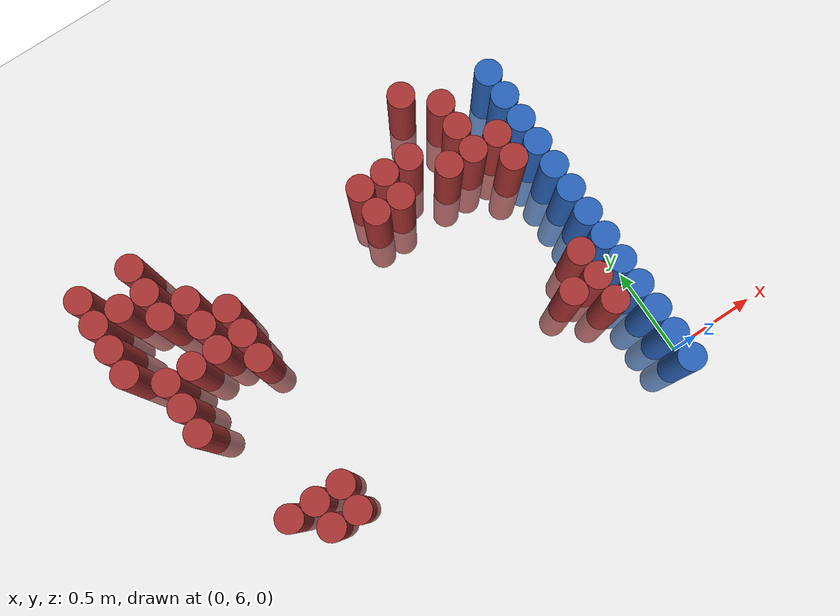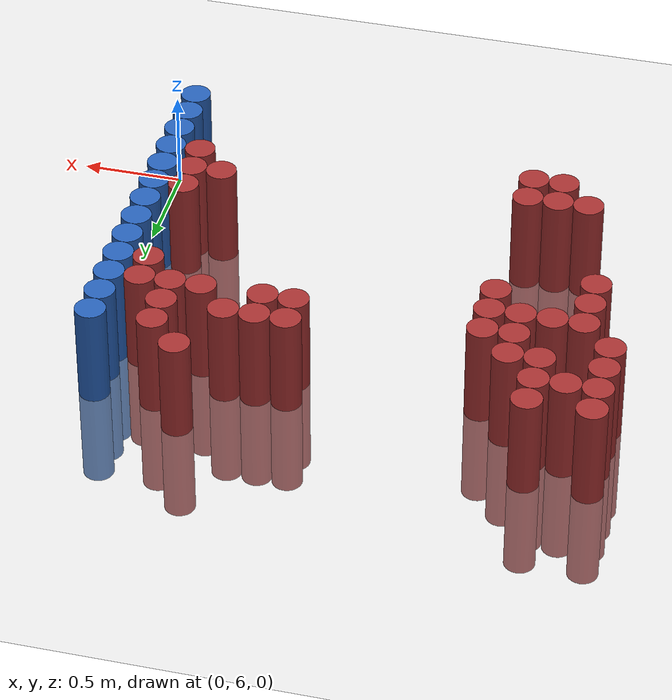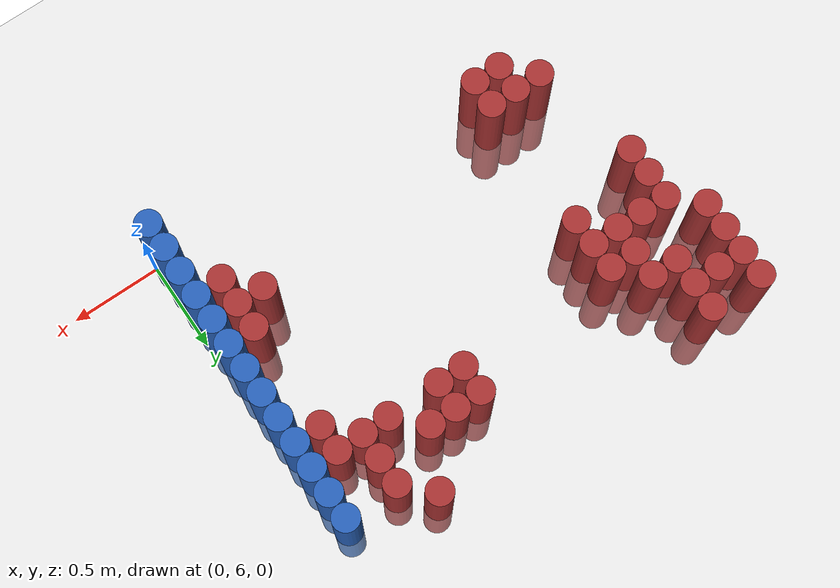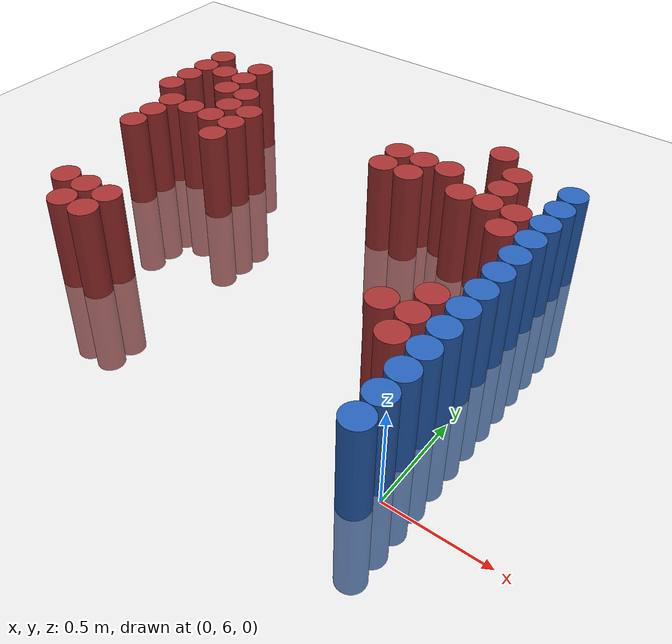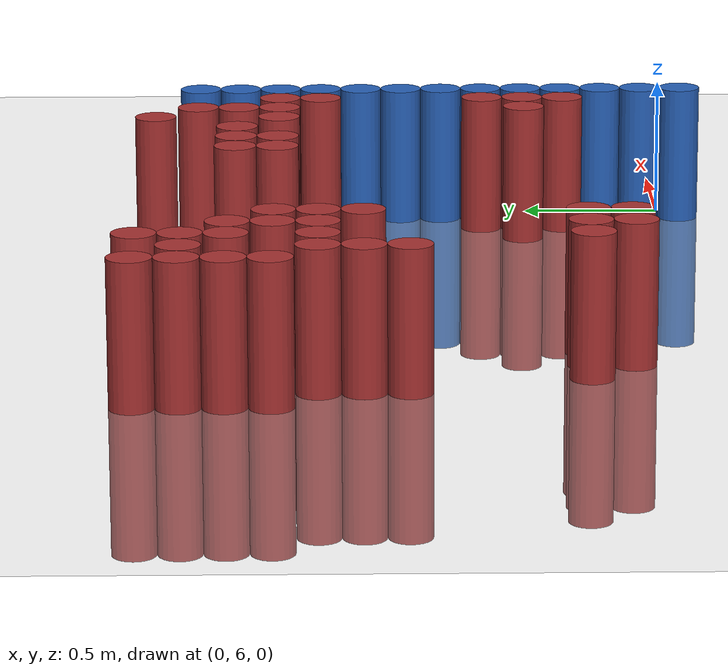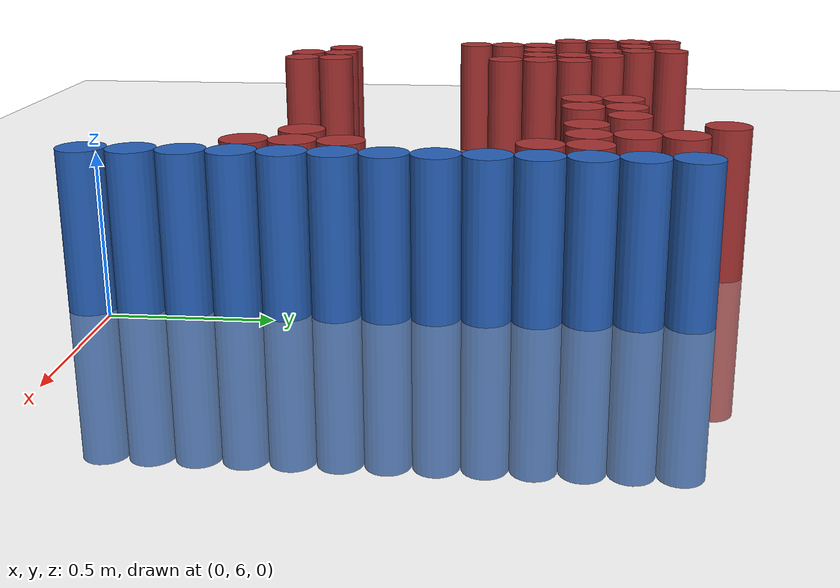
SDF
<sdf version="1.6">
 <world name="default">
  <model name="ground_plane">
   <static>1</static>
   <link name="link">
    <collision name="collision">
     <geometry><plane><normal>0 0 1</normal><size>100 100</size></plane></geometry>
     <surface><friction><ode><mu>100</mu><mu2>50</mu2></ode></friction></surface>
    </collision>
    <visual name="visual">
     <cast_shadows>0</cast_shadows>
     <geometry><plane><normal>0 0 1</normal><size>100 100</size></plane></geometry>
     <material>
      <script><uri>file://media/materials/scripts/gazebo.material</uri><name>Gazebo/Grey</name></script>
     </material>
    </visual>
   </link>
  </model>
  <model name="unit_cylinder_236">
   <static>1</static>
   <pose>-2.475000 7.425000 0.000000 0.000000 0.000000 0.000000</pose>
   <link name="link">
    <inertial>
     <mass>1</mass>
     <inertia><ixx>0.145833</ixx><ixy>0</ixy><ixz>0</ixz><iyy>0.145833</iyy><iyz>0</iyz><izz>0.125</izz></inertia>
    </inertial>
    <collision name="collision">
     <geometry><cylinder><radius>0.075000</radius><length>1</length></cylinder></geometry>
    </collision>
    <visual name="visual">
     <geometry><cylinder><radius>0.075000</radius><length>1</length></cylinder></geometry>
     <material>
      <ambient>0.648000 0.192000 0.192000 1</ambient>
      <diffuse>0.648000 0.192000 0.192000 1</diffuse>
     </material>
     <material>
      <script><name>Gazebo/Grey</name><uri>file://media/materials/scripts/gazebo.material</uri></script>
     </material>
    </visual>
   </link>
  </model>
  <model name="unit_cylinder_237">
   <static>1</static>
   <pose>-2.475000 7.575000 0.000000 0.000000 0.000000 0.000000</pose>
   <link name="link">
    <inertial>
     <mass>1</mass>
     <inertia><ixx>0.145833</ixx><ixy>0</ixy><ixz>0</ixz><iyy>0.145833</iyy><iyz>0</iyz><izz>0.125</izz></inertia>
    </inertial>
    <collision name="collision">
     <geometry><cylinder><radius>0.075000</radius><length>1</length></cylinder></geometry>
    </collision>
    <visual name="visual">
     <geometry><cylinder><radius>0.075000</radius><length>1</length></cylinder></geometry>
     <material>
      <ambient>0.648000 0.192000 0.192000 1</ambient>
      <diffuse>0.648000 0.192000 0.192000 1</diffuse>
     </material>
     <material>
      <script><name>Gazebo/Grey</name><uri>file://media/materials/scripts/gazebo.material</uri></script>
     </material>
    </visual>
   </link>
  </model>
  <model name="unit_cylinder_238">
   <static>1</static>
   <pose>-2.475000 7.725000 0.000000 0.000000 0.000000 0.000000</pose>
   <link name="link">
    <inertial>
     <mass>1</mass>
     <inertia><ixx>0.145833</ixx><ixy>0</ixy><ixz>0</ixz><iyy>0.145833</iyy><iyz>0</iyz><izz>0.125</izz></inertia>
    </inertial>
    <collision name="collision">
     <geometry><cylinder><radius>0.075000</radius><length>1</length></cylinder></geometry>
    </collision>
    <visual name="visual">
     <geometry><cylinder><radius>0.075000</radius><length>1</length></cylinder></geometry>
     <material>
      <ambient>0.648000 0.192000 0.192000 1</ambient>
      <diffuse>0.648000 0.192000 0.192000 1</diffuse>
     </material>
     <material>
      <script><name>Gazebo/Grey</name><uri>file://media/materials/scripts/gazebo.material</uri></script>
     </material>
    </visual>
   </link>
  </model>
  <model name="unit_cylinder_239">
   <static>1</static>
   <pose>-2.475000 7.875000 0.000000 0.000000 0.000000 0.000000</pose>
   <link name="link">
    <inertial>
     <mass>1</mass>
     <inertia><ixx>0.145833</ixx><ixy>0</ixy><ixz>0</ixz><iyy>0.145833</iyy><iyz>0</iyz><izz>0.125</izz></inertia>
    </inertial>
    <collision name="collision">
     <geometry><cylinder><radius>0.075000</radius><length>1</length></cylinder></geometry>
    </collision>
    <visual name="visual">
     <geometry><cylinder><radius>0.075000</radius><length>1</length></cylinder></geometry>
     <material>
      <ambient>0.648000 0.192000 0.192000 1</ambient>
      <diffuse>0.648000 0.192000 0.192000 1</diffuse>
     </material>
     <material>
      <script><name>Gazebo/Grey</name><uri>file://media/materials/scripts/gazebo.material</uri></script>
     </material>
    </visual>
   </link>
  </model>
  <model name="unit_cylinder_253">
   <static>1</static>
   <pose>-2.325000 6.975000 0.000000 0.000000 0.000000 0.000000</pose>
   <link name="link">
    <inertial>
     <mass>1</mass>
     <inertia><ixx>0.145833</ixx><ixy>0</ixy><ixz>0</ixz><iyy>0.145833</iyy><iyz>0</iyz><izz>0.125</izz></inertia>
    </inertial>
    <collision name="collision">
     <geometry><cylinder><radius>0.075000</radius><length>1</length></cylinder></geometry>
    </collision>
    <visual name="visual">
     <geometry><cylinder><radius>0.075000</radius><length>1</length></cylinder></geometry>
     <material>
      <ambient>0.648000 0.192000 0.192000 1</ambient>
      <diffuse>0.648000 0.192000 0.192000 1</diffuse>
     </material>
     <material>
      <script><name>Gazebo/Grey</name><uri>file://media/materials/scripts/gazebo.material</uri></script>
     </material>
    </visual>
   </link>
  </model>
  <model name="unit_cylinder_254">
   <static>1</static>
   <pose>-2.325000 7.125000 0.000000 0.000000 0.000000 0.000000</pose>
   <link name="link">
    <inertial>
     <mass>1</mass>
     <inertia><ixx>0.145833</ixx><ixy>0</ixy><ixz>0</ixz><iyy>0.145833</iyy><iyz>0</iyz><izz>0.125</izz></inertia>
    </inertial>
    <collision name="collision">
     <geometry><cylinder><radius>0.075000</radius><length>1</length></cylinder></geometry>
    </collision>
    <visual name="visual">
     <geometry><cylinder><radius>0.075000</radius><length>1</length></cylinder></geometry>
     <material>
      <ambient>0.648000 0.192000 0.192000 1</ambient>
      <diffuse>0.648000 0.192000 0.192000 1</diffuse>
     </material>
     <material>
      <script><name>Gazebo/Grey</name><uri>file://media/materials/scripts/gazebo.material</uri></script>
     </material>
    </visual>
   </link>
  </model>
  <model name="unit_cylinder_255">
   <static>1</static>
   <pose>-2.325000 7.275000 0.000000 0.000000 0.000000 0.000000</pose>
   <link name="link">
    <inertial>
     <mass>1</mass>
     <inertia><ixx>0.145833</ixx><ixy>0</ixy><ixz>0</ixz><iyy>0.145833</iyy><iyz>0</iyz><izz>0.125</izz></inertia>
    </inertial>
    <collision name="collision">
     <geometry><cylinder><radius>0.075000</radius><length>1</length></cylinder></geometry>
    </collision>
    <visual name="visual">
     <geometry><cylinder><radius>0.075000</radius><length>1</length></cylinder></geometry>
     <material>
      <ambient>0.648000 0.192000 0.192000 1</ambient>
      <diffuse>0.648000 0.192000 0.192000 1</diffuse>
     </material>
     <material>
      <script><name>Gazebo/Grey</name><uri>file://media/materials/scripts/gazebo.material</uri></script>
     </material>
    </visual>
   </link>
  </model>
  <model name="unit_cylinder_256">
   <static>1</static>
   <pose>-2.325000 7.725000 0.000000 0.000000 0.000000 0.000000</pose>
   <link name="link">
    <inertial>
     <mass>1</mass>
     <inertia><ixx>0.145833</ixx><ixy>0</ixy><ixz>0</ixz><iyy>0.145833</iyy><iyz>0</iyz><izz>0.125</izz></inertia>
    </inertial>
    <collision name="collision">
     <geometry><cylinder><radius>0.075000</radius><length>1</length></cylinder></geometry>
    </collision>
    <visual name="visual">
     <geometry><cylinder><radius>0.075000</radius><length>1</length></cylinder></geometry>
     <material>
      <ambient>0.648000 0.192000 0.192000 1</ambient>
      <diffuse>0.648000 0.192000 0.192000 1</diffuse>
     </material>
     <material>
      <script><name>Gazebo/Grey</name><uri>file://media/materials/scripts/gazebo.material</uri></script>
     </material>
    </visual>
   </link>
  </model>
  <model name="unit_cylinder_265">
   <static>1</static>
   <pose>-2.175000 6.375000 0.000000 0.000000 0.000000 0.000000</pose>
   <link name="link">
    <inertial>
     <mass>1</mass>
     <inertia><ixx>0.145833</ixx><ixy>0</ixy><ixz>0</ixz><iyy>0.145833</iyy><iyz>0</iyz><izz>0.125</izz></inertia>
    </inertial>
    <collision name="collision">
     <geometry><cylinder><radius>0.075000</radius><length>1</length></cylinder></geometry>
    </collision>
    <visual name="visual">
     <geometry><cylinder><radius>0.075000</radius><length>1</length></cylinder></geometry>
     <material>
      <ambient>0.648000 0.192000 0.192000 1</ambient>
      <diffuse>0.648000 0.192000 0.192000 1</diffuse>
     </material>
     <material>
      <script><name>Gazebo/Grey</name><uri>file://media/materials/scripts/gazebo.material</uri></script>
     </material>
    </visual>
   </link>
  </model>
  <model name="unit_cylinder_266">
   <static>1</static>
   <pose>-2.175000 7.275000 0.000000 0.000000 0.000000 0.000000</pose>
   <link name="link">
    <inertial>
     <mass>1</mass>
     <inertia><ixx>0.145833</ixx><ixy>0</ixy><ixz>0</ixz><iyy>0.145833</iyy><iyz>0</iyz><izz>0.125</izz></inertia>
    </inertial>
    <collision name="collision">
     <geometry><cylinder><radius>0.075000</radius><length>1</length></cylinder></geometry>
    </collision>
    <visual name="visual">
     <geometry><cylinder><radius>0.075000</radius><length>1</length></cylinder></geometry>
     <material>
      <ambient>0.648000 0.192000 0.192000 1</ambient>
      <diffuse>0.648000 0.192000 0.192000 1</diffuse>
     </material>
     <material>
      <script><name>Gazebo/Grey</name><uri>file://media/materials/scripts/gazebo.material</uri></script>
     </material>
    </visual>
   </link>
  </model>
  <model name="unit_cylinder_267">
   <static>1</static>
   <pose>-2.175000 7.575000 0.000000 0.000000 0.000000 0.000000</pose>
   <link name="link">
    <inertial>
     <mass>1</mass>
     <inertia><ixx>0.145833</ixx><ixy>0</ixy><ixz>0</ixz><iyy>0.145833</iyy><iyz>0</iyz><izz>0.125</izz></inertia>
    </inertial>
    <collision name="collision">
     <geometry><cylinder><radius>0.075000</radius><length>1</length></cylinder></geometry>
    </collision>
    <visual name="visual">
     <geometry><cylinder><radius>0.075000</radius><length>1</length></cylinder></geometry>
     <material>
      <ambient>0.648000 0.192000 0.192000 1</ambient>
      <diffuse>0.648000 0.192000 0.192000 1</diffuse>
     </material>
     <material>
      <script><name>Gazebo/Grey</name><uri>file://media/materials/scripts/gazebo.material</uri></script>
     </material>
    </visual>
   </link>
  </model>
  <model name="unit_cylinder_268">
   <static>1</static>
   <pose>-2.175000 7.725000 0.000000 0.000000 0.000000 0.000000</pose>
   <link name="link">
    <inertial>
     <mass>1</mass>
     <inertia><ixx>0.145833</ixx><ixy>0</ixy><ixz>0</ixz><iyy>0.145833</iyy><iyz>0</iyz><izz>0.125</izz></inertia>
    </inertial>
    <collision name="collision">
     <geometry><cylinder><radius>0.075000</radius><length>1</length></cylinder></geometry>
    </collision>
    <visual name="visual">
     <geometry><cylinder><radius>0.075000</radius><length>1</length></cylinder></geometry>
     <material>
      <ambient>0.648000 0.192000 0.192000 1</ambient>
      <diffuse>0.648000 0.192000 0.192000 1</diffuse>
     </material>
     <material>
      <script><name>Gazebo/Grey</name><uri>file://media/materials/scripts/gazebo.material</uri></script>
     </material>
    </visual>
   </link>
  </model>
  <model name="unit_cylinder_269">
   <static>1</static>
   <pose>-2.175000 7.875000 0.000000 0.000000 0.000000 0.000000</pose>
   <link name="link">
    <inertial>
     <mass>1</mass>
     <inertia><ixx>0.145833</ixx><ixy>0</ixy><ixz>0</ixz><iyy>0.145833</iyy><iyz>0</iyz><izz>0.125</izz></inertia>
    </inertial>
    <collision name="collision">
     <geometry><cylinder><radius>0.075000</radius><length>1</length></cylinder></geometry>
    </collision>
    <visual name="visual">
     <geometry><cylinder><radius>0.075000</radius><length>1</length></cylinder></geometry>
     <material>
      <ambient>0.648000 0.192000 0.192000 1</ambient>
      <diffuse>0.648000 0.192000 0.192000 1</diffuse>
     </material>
     <material>
      <script><name>Gazebo/Grey</name><uri>file://media/materials/scripts/gazebo.material</uri></script>
     </material>
    </visual>
   </link>
  </model>
  <model name="unit_cylinder_275">
   <static>1</static>
   <pose>-2.025000 6.225000 0.000000 0.000000 0.000000 0.000000</pose>
   <link name="link">
    <inertial>
     <mass>1</mass>
     <inertia><ixx>0.145833</ixx><ixy>0</ixy><ixz>0</ixz><iyy>0.145833</iyy><iyz>0</iyz><izz>0.125</izz></inertia>
    </inertial>
    <collision name="collision">
     <geometry><cylinder><radius>0.075000</radius><length>1</length></cylinder></geometry>
    </collision>
    <visual name="visual">
     <geometry><cylinder><radius>0.075000</radius><length>1</length></cylinder></geometry>
     <material>
      <ambient>0.648000 0.192000 0.192000 1</ambient>
      <diffuse>0.648000 0.192000 0.192000 1</diffuse>
     </material>
     <material>
      <script><name>Gazebo/Grey</name><uri>file://media/materials/scripts/gazebo.material</uri></script>
     </material>
    </visual>
   </link>
  </model>
  <model name="unit_cylinder_276">
   <static>1</static>
   <pose>-2.025000 6.375000 0.000000 0.000000 0.000000 0.000000</pose>
   <link name="link">
    <inertial>
     <mass>1</mass>
     <inertia><ixx>0.145833</ixx><ixy>0</ixy><ixz>0</ixz><iyy>0.145833</iyy><iyz>0</iyz><izz>0.125</izz></inertia>
    </inertial>
    <collision name="collision">
     <geometry><cylinder><radius>0.075000</radius><length>1</length></cylinder></geometry>
    </collision>
    <visual name="visual">
     <geometry><cylinder><radius>0.075000</radius><length>1</length></cylinder></geometry>
     <material>
      <ambient>0.648000 0.192000 0.192000 1</ambient>
      <diffuse>0.648000 0.192000 0.192000 1</diffuse>
     </material>
     <material>
      <script><name>Gazebo/Grey</name><uri>file://media/materials/scripts/gazebo.material</uri></script>
     </material>
    </visual>
   </link>
  </model>
  <model name="unit_cylinder_277">
   <static>1</static>
   <pose>-2.025000 7.275000 0.000000 0.000000 0.000000 0.000000</pose>
   <link name="link">
    <inertial>
     <mass>1</mass>
     <inertia><ixx>0.145833</ixx><ixy>0</ixy><ixz>0</ixz><iyy>0.145833</iyy><iyz>0</iyz><izz>0.125</izz></inertia>
    </inertial>
    <collision name="collision">
     <geometry><cylinder><radius>0.075000</radius><length>1</length></cylinder></geometry>
    </collision>
    <visual name="visual">
     <geometry><cylinder><radius>0.075000</radius><length>1</length></cylinder></geometry>
     <material>
      <ambient>0.648000 0.192000 0.192000 1</ambient>
      <diffuse>0.648000 0.192000 0.192000 1</diffuse>
     </material>
     <material>
      <script><name>Gazebo/Grey</name><uri>file://media/materials/scripts/gazebo.material</uri></script>
     </material>
    </visual>
   </link>
  </model>
  <model name="unit_cylinder_278">
   <static>1</static>
   <pose>-2.025000 7.425000 0.000000 0.000000 0.000000 0.000000</pose>
   <link name="link">
    <inertial>
     <mass>1</mass>
     <inertia><ixx>0.145833</ixx><ixy>0</ixy><ixz>0</ixz><iyy>0.145833</iyy><iyz>0</iyz><izz>0.125</izz></inertia>
    </inertial>
    <collision name="collision">
     <geometry><cylinder><radius>0.075000</radius><length>1</length></cylinder></geometry>
    </collision>
    <visual name="visual">
     <geometry><cylinder><radius>0.075000</radius><length>1</length></cylinder></geometry>
     <material>
      <ambient>0.648000 0.192000 0.192000 1</ambient>
      <diffuse>0.648000 0.192000 0.192000 1</diffuse>
     </material>
     <material>
      <script><name>Gazebo/Grey</name><uri>file://media/materials/scripts/gazebo.material</uri></script>
     </material>
    </visual>
   </link>
  </model>
  <model name="unit_cylinder_279">
   <static>1</static>
   <pose>-2.025000 7.575000 0.000000 0.000000 0.000000 0.000000</pose>
   <link name="link">
    <inertial>
     <mass>1</mass>
     <inertia><ixx>0.145833</ixx><ixy>0</ixy><ixz>0</ixz><iyy>0.145833</iyy><iyz>0</iyz><izz>0.125</izz></inertia>
    </inertial>
    <collision name="collision">
     <geometry><cylinder><radius>0.075000</radius><length>1</length></cylinder></geometry>
    </collision>
    <visual name="visual">
     <geometry><cylinder><radius>0.075000</radius><length>1</length></cylinder></geometry>
     <material>
      <ambient>0.648000 0.192000 0.192000 1</ambient>
      <diffuse>0.648000 0.192000 0.192000 1</diffuse>
     </material>
     <material>
      <script><name>Gazebo/Grey</name><uri>file://media/materials/scripts/gazebo.material</uri></script>
     </material>
    </visual>
   </link>
  </model>
  <model name="unit_cylinder_285">
   <static>1</static>
   <pose>-1.875000 6.225000 0.000000 0.000000 0.000000 0.000000</pose>
   <link name="link">
    <inertial>
     <mass>1</mass>
     <inertia><ixx>0.145833</ixx><ixy>0</ixy><ixz>0</ixz><iyy>0.145833</iyy><iyz>0</iyz><izz>0.125</izz></inertia>
    </inertial>
    <collision name="collision">
     <geometry><cylinder><radius>0.075000</radius><length>1</length></cylinder></geometry>
    </collision>
    <visual name="visual">
     <geometry><cylinder><radius>0.075000</radius><length>1</length></cylinder></geometry>
     <material>
      <ambient>0.648000 0.192000 0.192000 1</ambient>
      <diffuse>0.648000 0.192000 0.192000 1</diffuse>
     </material>
     <material>
      <script><name>Gazebo/Grey</name><uri>file://media/materials/scripts/gazebo.material</uri></script>
     </material>
    </visual>
   </link>
  </model>
  <model name="unit_cylinder_286">
   <static>1</static>
   <pose>-1.875000 6.375000 0.000000 0.000000 0.000000 0.000000</pose>
   <link name="link">
    <inertial>
     <mass>1</mass>
     <inertia><ixx>0.145833</ixx><ixy>0</ixy><ixz>0</ixz><iyy>0.145833</iyy><iyz>0</iyz><izz>0.125</izz></inertia>
    </inertial>
    <collision name="collision">
     <geometry><cylinder><radius>0.075000</radius><length>1</length></cylinder></geometry>
    </collision>
    <visual name="visual">
     <geometry><cylinder><radius>0.075000</radius><length>1</length></cylinder></geometry>
     <material>
      <ambient>0.648000 0.192000 0.192000 1</ambient>
      <diffuse>0.648000 0.192000 0.192000 1</diffuse>
     </material>
     <material>
      <script><name>Gazebo/Grey</name><uri>file://media/materials/scripts/gazebo.material</uri></script>
     </material>
    </visual>
   </link>
  </model>
  <model name="unit_cylinder_287">
   <static>1</static>
   <pose>-1.875000 7.125000 0.000000 0.000000 0.000000 0.000000</pose>
   <link name="link">
    <inertial>
     <mass>1</mass>
     <inertia><ixx>0.145833</ixx><ixy>0</ixy><ixz>0</ixz><iyy>0.145833</iyy><iyz>0</iyz><izz>0.125</izz></inertia>
    </inertial>
    <collision name="collision">
     <geometry><cylinder><radius>0.075000</radius><length>1</length></cylinder></geometry>
    </collision>
    <visual name="visual">
     <geometry><cylinder><radius>0.075000</radius><length>1</length></cylinder></geometry>
     <material>
      <ambient>0.648000 0.192000 0.192000 1</ambient>
      <diffuse>0.648000 0.192000 0.192000 1</diffuse>
     </material>
     <material>
      <script><name>Gazebo/Grey</name><uri>file://media/materials/scripts/gazebo.material</uri></script>
     </material>
    </visual>
   </link>
  </model>
  <model name="unit_cylinder_288">
   <static>1</static>
   <pose>-1.875000 7.275000 0.000000 0.000000 0.000000 0.000000</pose>
   <link name="link">
    <inertial>
     <mass>1</mass>
     <inertia><ixx>0.145833</ixx><ixy>0</ixy><ixz>0</ixz><iyy>0.145833</iyy><iyz>0</iyz><izz>0.125</izz></inertia>
    </inertial>
    <collision name="collision">
     <geometry><cylinder><radius>0.075000</radius><length>1</length></cylinder></geometry>
    </collision>
    <visual name="visual">
     <geometry><cylinder><radius>0.075000</radius><length>1</length></cylinder></geometry>
     <material>
      <ambient>0.648000 0.192000 0.192000 1</ambient>
      <diffuse>0.648000 0.192000 0.192000 1</diffuse>
     </material>
     <material>
      <script><name>Gazebo/Grey</name><uri>file://media/materials/scripts/gazebo.material</uri></script>
     </material>
    </visual>
   </link>
  </model>
  <model name="unit_cylinder_289">
   <static>1</static>
   <pose>-1.875000 7.425000 0.000000 0.000000 0.000000 0.000000</pose>
   <link name="link">
    <inertial>
     <mass>1</mass>
     <inertia><ixx>0.145833</ixx><ixy>0</ixy><ixz>0</ixz><iyy>0.145833</iyy><iyz>0</iyz><izz>0.125</izz></inertia>
    </inertial>
    <collision name="collision">
     <geometry><cylinder><radius>0.075000</radius><length>1</length></cylinder></geometry>
    </collision>
    <visual name="visual">
     <geometry><cylinder><radius>0.075000</radius><length>1</length></cylinder></geometry>
     <material>
      <ambient>0.648000 0.192000 0.192000 1</ambient>
      <diffuse>0.648000 0.192000 0.192000 1</diffuse>
     </material>
     <material>
      <script><name>Gazebo/Grey</name><uri>file://media/materials/scripts/gazebo.material</uri></script>
     </material>
    </visual>
   </link>
  </model>
  <model name="unit_cylinder_294">
   <static>1</static>
   <pose>-0.975000 7.425000 0.000000 0.000000 0.000000 0.000000</pose>
   <link name="link">
    <inertial>
     <mass>1</mass>
     <inertia><ixx>0.145833</ixx><ixy>0</ixy><ixz>0</ixz><iyy>0.145833</iyy><iyz>0</iyz><izz>0.125</izz></inertia>
    </inertial>
    <collision name="collision">
     <geometry><cylinder><radius>0.075000</radius><length>1</length></cylinder></geometry>
    </collision>
    <visual name="visual">
     <geometry><cylinder><radius>0.075000</radius><length>1</length></cylinder></geometry>
     <material>
      <ambient>0.648000 0.192000 0.192000 1</ambient>
      <diffuse>0.648000 0.192000 0.192000 1</diffuse>
     </material>
     <material>
      <script><name>Gazebo/Grey</name><uri>file://media/materials/scripts/gazebo.material</uri></script>
     </material>
    </visual>
   </link>
  </model>
  <model name="unit_cylinder_295">
   <static>1</static>
   <pose>-0.975000 7.575000 0.000000 0.000000 0.000000 0.000000</pose>
   <link name="link">
    <inertial>
     <mass>1</mass>
     <inertia><ixx>0.145833</ixx><ixy>0</ixy><ixz>0</ixz><iyy>0.145833</iyy><iyz>0</iyz><izz>0.125</izz></inertia>
    </inertial>
    <collision name="collision">
     <geometry><cylinder><radius>0.075000</radius><length>1</length></cylinder></geometry>
    </collision>
    <visual name="visual">
     <geometry><cylinder><radius>0.075000</radius><length>1</length></cylinder></geometry>
     <material>
      <ambient>0.648000 0.192000 0.192000 1</ambient>
      <diffuse>0.648000 0.192000 0.192000 1</diffuse>
     </material>
     <material>
      <script><name>Gazebo/Grey</name><uri>file://media/materials/scripts/gazebo.material</uri></script>
     </material>
    </visual>
   </link>
  </model>
  <model name="unit_cylinder_297">
   <static>1</static>
   <pose>-0.825000 7.425000 0.000000 0.000000 0.000000 0.000000</pose>
   <link name="link">
    <inertial>
     <mass>1</mass>
     <inertia><ixx>0.145833</ixx><ixy>0</ixy><ixz>0</ixz><iyy>0.145833</iyy><iyz>0</iyz><izz>0.125</izz></inertia>
    </inertial>
    <collision name="collision">
     <geometry><cylinder><radius>0.075000</radius><length>1</length></cylinder></geometry>
    </collision>
    <visual name="visual">
     <geometry><cylinder><radius>0.075000</radius><length>1</length></cylinder></geometry>
     <material>
      <ambient>0.648000 0.192000 0.192000 1</ambient>
      <diffuse>0.648000 0.192000 0.192000 1</diffuse>
     </material>
     <material>
      <script><name>Gazebo/Grey</name><uri>file://media/materials/scripts/gazebo.material</uri></script>
     </material>
    </visual>
   </link>
  </model>
  <model name="unit_cylinder_298">
   <static>1</static>
   <pose>-0.825000 7.575000 0.000000 0.000000 0.000000 0.000000</pose>
   <link name="link">
    <inertial>
     <mass>1</mass>
     <inertia><ixx>0.145833</ixx><ixy>0</ixy><ixz>0</ixz><iyy>0.145833</iyy><iyz>0</iyz><izz>0.125</izz></inertia>
    </inertial>
    <collision name="collision">
     <geometry><cylinder><radius>0.075000</radius><length>1</length></cylinder></geometry>
    </collision>
    <visual name="visual">
     <geometry><cylinder><radius>0.075000</radius><length>1</length></cylinder></geometry>
     <material>
      <ambient>0.648000 0.192000 0.192000 1</ambient>
      <diffuse>0.648000 0.192000 0.192000 1</diffuse>
     </material>
     <material>
      <script><name>Gazebo/Grey</name><uri>file://media/materials/scripts/gazebo.material</uri></script>
     </material>
    </visual>
   </link>
  </model>
  <model name="unit_cylinder_303">
   <static>1</static>
   <pose>-0.675000 7.575000 0.000000 0.000000 0.000000 0.000000</pose>
   <link name="link">
    <inertial>
     <mass>1</mass>
     <inertia><ixx>0.145833</ixx><ixy>0</ixy><ixz>0</ixz><iyy>0.145833</iyy><iyz>0</iyz><izz>0.125</izz></inertia>
    </inertial>
    <collision name="collision">
     <geometry><cylinder><radius>0.075000</radius><length>1</length></cylinder></geometry>
    </collision>
    <visual name="visual">
     <geometry><cylinder><radius>0.075000</radius><length>1</length></cylinder></geometry>
     <material>
      <ambient>0.648000 0.192000 0.192000 1</ambient>
      <diffuse>0.648000 0.192000 0.192000 1</diffuse>
     </material>
     <material>
      <script><name>Gazebo/Grey</name><uri>file://media/materials/scripts/gazebo.material</uri></script>
     </material>
    </visual>
   </link>
  </model>
  <model name="unit_cylinder_307">
   <static>1</static>
   <pose>-0.525000 7.425000 0.000000 0.000000 0.000000 0.000000</pose>
   <link name="link">
    <inertial>
     <mass>1</mass>
     <inertia><ixx>0.145833</ixx><ixy>0</ixy><ixz>0</ixz><iyy>0.145833</iyy><iyz>0</iyz><izz>0.125</izz></inertia>
    </inertial>
    <collision name="collision">
     <geometry><cylinder><radius>0.075000</radius><length>1</length></cylinder></geometry>
    </collision>
    <visual name="visual">
     <geometry><cylinder><radius>0.075000</radius><length>1</length></cylinder></geometry>
     <material>
      <ambient>0.648000 0.192000 0.192000 1</ambient>
      <diffuse>0.648000 0.192000 0.192000 1</diffuse>
     </material>
     <material>
      <script><name>Gazebo/Grey</name><uri>file://media/materials/scripts/gazebo.material</uri></script>
     </material>
    </visual>
   </link>
  </model>
  <model name="unit_cylinder_308">
   <static>1</static>
   <pose>-0.525000 7.875000 0.000000 0.000000 0.000000 0.000000</pose>
   <link name="link">
    <inertial>
     <mass>1</mass>
     <inertia><ixx>0.145833</ixx><ixy>0</ixy><ixz>0</ixz><iyy>0.145833</iyy><iyz>0</iyz><izz>0.125</izz></inertia>
    </inertial>
    <collision name="collision">
     <geometry><cylinder><radius>0.075000</radius><length>1</length></cylinder></geometry>
    </collision>
    <visual name="visual">
     <geometry><cylinder><radius>0.075000</radius><length>1</length></cylinder></geometry>
     <material>
      <ambient>0.648000 0.192000 0.192000 1</ambient>
      <diffuse>0.648000 0.192000 0.192000 1</diffuse>
     </material>
     <material>
      <script><name>Gazebo/Grey</name><uri>file://media/materials/scripts/gazebo.material</uri></script>
     </material>
    </visual>
   </link>
  </model>
  <model name="unit_cylinder_312">
   <static>1</static>
   <pose>-0.375000 6.525000 0.000000 0.000000 0.000000 0.000000</pose>
   <link name="link">
    <inertial>
     <mass>1</mass>
     <inertia><ixx>0.145833</ixx><ixy>0</ixy><ixz>0</ixz><iyy>0.145833</iyy><iyz>0</iyz><izz>0.125</izz></inertia>
    </inertial>
    <collision name="collision">
     <geometry><cylinder><radius>0.075000</radius><length>1</length></cylinder></geometry>
    </collision>
    <visual name="visual">
     <geometry><cylinder><radius>0.075000</radius><length>1</length></cylinder></geometry>
     <material>
      <ambient>0.648000 0.192000 0.192000 1</ambient>
      <diffuse>0.648000 0.192000 0.192000 1</diffuse>
     </material>
     <material>
      <script><name>Gazebo/Grey</name><uri>file://media/materials/scripts/gazebo.material</uri></script>
     </material>
    </visual>
   </link>
  </model>
  <model name="unit_cylinder_313">
   <static>1</static>
   <pose>-0.375000 7.425000 0.000000 0.000000 0.000000 0.000000</pose>
   <link name="link">
    <inertial>
     <mass>1</mass>
     <inertia><ixx>0.145833</ixx><ixy>0</ixy><ixz>0</ixz><iyy>0.145833</iyy><iyz>0</iyz><izz>0.125</izz></inertia>
    </inertial>
    <collision name="collision">
     <geometry><cylinder><radius>0.075000</radius><length>1</length></cylinder></geometry>
    </collision>
    <visual name="visual">
     <geometry><cylinder><radius>0.075000</radius><length>1</length></cylinder></geometry>
     <material>
      <ambient>0.648000 0.192000 0.192000 1</ambient>
      <diffuse>0.648000 0.192000 0.192000 1</diffuse>
     </material>
     <material>
      <script><name>Gazebo/Grey</name><uri>file://media/materials/scripts/gazebo.material</uri></script>
     </material>
    </visual>
   </link>
  </model>
  <model name="unit_cylinder_314">
   <static>1</static>
   <pose>-0.375000 7.575000 0.000000 0.000000 0.000000 0.000000</pose>
   <link name="link">
    <inertial>
     <mass>1</mass>
     <inertia><ixx>0.145833</ixx><ixy>0</ixy><ixz>0</ixz><iyy>0.145833</iyy><iyz>0</iyz><izz>0.125</izz></inertia>
    </inertial>
    <collision name="collision">
     <geometry><cylinder><radius>0.075000</radius><length>1</length></cylinder></geometry>
    </collision>
    <visual name="visual">
     <geometry><cylinder><radius>0.075000</radius><length>1</length></cylinder></geometry>
     <material>
      <ambient>0.648000 0.192000 0.192000 1</ambient>
      <diffuse>0.648000 0.192000 0.192000 1</diffuse>
     </material>
     <material>
      <script><name>Gazebo/Grey</name><uri>file://media/materials/scripts/gazebo.material</uri></script>
     </material>
    </visual>
   </link>
  </model>
  <model name="unit_cylinder_315">
   <static>1</static>
   <pose>-0.375000 7.725000 0.000000 0.000000 0.000000 0.000000</pose>
   <link name="link">
    <inertial>
     <mass>1</mass>
     <inertia><ixx>0.145833</ixx><ixy>0</ixy><ixz>0</ixz><iyy>0.145833</iyy><iyz>0</iyz><izz>0.125</izz></inertia>
    </inertial>
    <collision name="collision">
     <geometry><cylinder><radius>0.075000</radius><length>1</length></cylinder></geometry>
    </collision>
    <visual name="visual">
     <geometry><cylinder><radius>0.075000</radius><length>1</length></cylinder></geometry>
     <material>
      <ambient>0.648000 0.192000 0.192000 1</ambient>
      <diffuse>0.648000 0.192000 0.192000 1</diffuse>
     </material>
     <material>
      <script><name>Gazebo/Grey</name><uri>file://media/materials/scripts/gazebo.material</uri></script>
     </material>
    </visual>
   </link>
  </model>
  <model name="unit_cylinder_322">
   <static>1</static>
   <pose>-0.225000 6.375000 0.000000 0.000000 0.000000 0.000000</pose>
   <link name="link">
    <inertial>
     <mass>1</mass>
     <inertia><ixx>0.145833</ixx><ixy>0</ixy><ixz>0</ixz><iyy>0.145833</iyy><iyz>0</iyz><izz>0.125</izz></inertia>
    </inertial>
    <collision name="collision">
     <geometry><cylinder><radius>0.075000</radius><length>1</length></cylinder></geometry>
    </collision>
    <visual name="visual">
     <geometry><cylinder><radius>0.075000</radius><length>1</length></cylinder></geometry>
     <material>
      <ambient>0.648000 0.192000 0.192000 1</ambient>
      <diffuse>0.648000 0.192000 0.192000 1</diffuse>
     </material>
     <material>
      <script><name>Gazebo/Grey</name><uri>file://media/materials/scripts/gazebo.material</uri></script>
     </material>
    </visual>
   </link>
  </model>
  <model name="unit_cylinder_323">
   <static>1</static>
   <pose>-0.225000 6.525000 0.000000 0.000000 0.000000 0.000000</pose>
   <link name="link">
    <inertial>
     <mass>1</mass>
     <inertia><ixx>0.145833</ixx><ixy>0</ixy><ixz>0</ixz><iyy>0.145833</iyy><iyz>0</iyz><izz>0.125</izz></inertia>
    </inertial>
    <collision name="collision">
     <geometry><cylinder><radius>0.075000</radius><length>1</length></cylinder></geometry>
    </collision>
    <visual name="visual">
     <geometry><cylinder><radius>0.075000</radius><length>1</length></cylinder></geometry>
     <material>
      <ambient>0.648000 0.192000 0.192000 1</ambient>
      <diffuse>0.648000 0.192000 0.192000 1</diffuse>
     </material>
     <material>
      <script><name>Gazebo/Grey</name><uri>file://media/materials/scripts/gazebo.material</uri></script>
     </material>
    </visual>
   </link>
  </model>
  <model name="unit_cylinder_324">
   <static>1</static>
   <pose>-0.225000 6.675000 0.000000 0.000000 0.000000 0.000000</pose>
   <link name="link">
    <inertial>
     <mass>1</mass>
     <inertia><ixx>0.145833</ixx><ixy>0</ixy><ixz>0</ixz><iyy>0.145833</iyy><iyz>0</iyz><izz>0.125</izz></inertia>
    </inertial>
    <collision name="collision">
     <geometry><cylinder><radius>0.075000</radius><length>1</length></cylinder></geometry>
    </collision>
    <visual name="visual">
     <geometry><cylinder><radius>0.075000</radius><length>1</length></cylinder></geometry>
     <material>
      <ambient>0.648000 0.192000 0.192000 1</ambient>
      <diffuse>0.648000 0.192000 0.192000 1</diffuse>
     </material>
     <material>
      <script><name>Gazebo/Grey</name><uri>file://media/materials/scripts/gazebo.material</uri></script>
     </material>
    </visual>
   </link>
  </model>
  <model name="unit_cylinder_325">
   <static>1</static>
   <pose>-0.225000 7.275000 0.000000 0.000000 0.000000 0.000000</pose>
   <link name="link">
    <inertial>
     <mass>1</mass>
     <inertia><ixx>0.145833</ixx><ixy>0</ixy><ixz>0</ixz><iyy>0.145833</iyy><iyz>0</iyz><izz>0.125</izz></inertia>
    </inertial>
    <collision name="collision">
     <geometry><cylinder><radius>0.075000</radius><length>1</length></cylinder></geometry>
    </collision>
    <visual name="visual">
     <geometry><cylinder><radius>0.075000</radius><length>1</length></cylinder></geometry>
     <material>
      <ambient>0.648000 0.192000 0.192000 1</ambient>
      <diffuse>0.648000 0.192000 0.192000 1</diffuse>
     </material>
     <material>
      <script><name>Gazebo/Grey</name><uri>file://media/materials/scripts/gazebo.material</uri></script>
     </material>
    </visual>
   </link>
  </model>
  <model name="unit_cylinder_326">
   <static>1</static>
   <pose>-0.225000 7.425000 0.000000 0.000000 0.000000 0.000000</pose>
   <link name="link">
    <inertial>
     <mass>1</mass>
     <inertia><ixx>0.145833</ixx><ixy>0</ixy><ixz>0</ixz><iyy>0.145833</iyy><iyz>0</iyz><izz>0.125</izz></inertia>
    </inertial>
    <collision name="collision">
     <geometry><cylinder><radius>0.075000</radius><length>1</length></cylinder></geometry>
    </collision>
    <visual name="visual">
     <geometry><cylinder><radius>0.075000</radius><length>1</length></cylinder></geometry>
     <material>
      <ambient>0.648000 0.192000 0.192000 1</ambient>
      <diffuse>0.648000 0.192000 0.192000 1</diffuse>
     </material>
     <material>
      <script><name>Gazebo/Grey</name><uri>file://media/materials/scripts/gazebo.material</uri></script>
     </material>
    </visual>
   </link>
  </model>
  <model name="unit_cylinder_340">
   <static>1</static>
   <pose>-0.075000 5.925000 0.000000 0.000000 0.000000 0.000000</pose>
   <link name="link">
    <inertial>
     <mass>1</mass>
     <inertia><ixx>0.145833</ixx><ixy>0</ixy><ixz>0</ixz><iyy>0.145833</iyy><iyz>0</iyz><izz>0.125</izz></inertia>
    </inertial>
    <collision name="collision">
     <geometry><cylinder><radius>0.075000</radius><length>1</length></cylinder></geometry>
    </collision>
    <visual name="visual">
     <geometry><cylinder><radius>0.075000</radius><length>1</length></cylinder></geometry>
     <material>
      <ambient>0.152000 0.379000 0.720000 1</ambient>
      <diffuse>0.152000 0.379000 0.720000 1</diffuse>
     </material>
     <material>
      <script><name>Gazebo/Grey</name><uri>file://media/materials/scripts/gazebo.material</uri></script>
     </material>
    </visual>
   </link>
  </model>
  <model name="unit_cylinder_341">
   <static>1</static>
   <pose>-0.075000 6.075000 0.000000 0.000000 0.000000 0.000000</pose>
   <link name="link">
    <inertial>
     <mass>1</mass>
     <inertia><ixx>0.145833</ixx><ixy>0</ixy><ixz>0</ixz><iyy>0.145833</iyy><iyz>0</iyz><izz>0.125</izz></inertia>
    </inertial>
    <collision name="collision">
     <geometry><cylinder><radius>0.075000</radius><length>1</length></cylinder></geometry>
    </collision>
    <visual name="visual">
     <geometry><cylinder><radius>0.075000</radius><length>1</length></cylinder></geometry>
     <material>
      <ambient>0.152000 0.379000 0.720000 1</ambient>
      <diffuse>0.152000 0.379000 0.720000 1</diffuse>
     </material>
     <material>
      <script><name>Gazebo/Grey</name><uri>file://media/materials/scripts/gazebo.material</uri></script>
     </material>
    </visual>
   </link>
  </model>
  <model name="unit_cylinder_342">
   <static>1</static>
   <pose>-0.075000 6.225000 0.000000 0.000000 0.000000 0.000000</pose>
   <link name="link">
    <inertial>
     <mass>1</mass>
     <inertia><ixx>0.145833</ixx><ixy>0</ixy><ixz>0</ixz><iyy>0.145833</iyy><iyz>0</iyz><izz>0.125</izz></inertia>
    </inertial>
    <collision name="collision">
     <geometry><cylinder><radius>0.075000</radius><length>1</length></cylinder></geometry>
    </collision>
    <visual name="visual">
     <geometry><cylinder><radius>0.075000</radius><length>1</length></cylinder></geometry>
     <material>
      <ambient>0.152000 0.379000 0.720000 1</ambient>
      <diffuse>0.152000 0.379000 0.720000 1</diffuse>
     </material>
     <material>
      <script><name>Gazebo/Grey</name><uri>file://media/materials/scripts/gazebo.material</uri></script>
     </material>
    </visual>
   </link>
  </model>
  <model name="unit_cylinder_343">
   <static>1</static>
   <pose>-0.075000 6.375000 0.000000 0.000000 0.000000 0.000000</pose>
   <link name="link">
    <inertial>
     <mass>1</mass>
     <inertia><ixx>0.145833</ixx><ixy>0</ixy><ixz>0</ixz><iyy>0.145833</iyy><iyz>0</iyz><izz>0.125</izz></inertia>
    </inertial>
    <collision name="collision">
     <geometry><cylinder><radius>0.075000</radius><length>1</length></cylinder></geometry>
    </collision>
    <visual name="visual">
     <geometry><cylinder><radius>0.075000</radius><length>1</length></cylinder></geometry>
     <material>
      <ambient>0.152000 0.379000 0.720000 1</ambient>
      <diffuse>0.152000 0.379000 0.720000 1</diffuse>
     </material>
     <material>
      <script><name>Gazebo/Grey</name><uri>file://media/materials/scripts/gazebo.material</uri></script>
     </material>
    </visual>
   </link>
  </model>
  <model name="unit_cylinder_344">
   <static>1</static>
   <pose>-0.075000 6.525000 0.000000 0.000000 0.000000 0.000000</pose>
   <link name="link">
    <inertial>
     <mass>1</mass>
     <inertia><ixx>0.145833</ixx><ixy>0</ixy><ixz>0</ixz><iyy>0.145833</iyy><iyz>0</iyz><izz>0.125</izz></inertia>
    </inertial>
    <collision name="collision">
     <geometry><cylinder><radius>0.075000</radius><length>1</length></cylinder></geometry>
    </collision>
    <visual name="visual">
     <geometry><cylinder><radius>0.075000</radius><length>1</length></cylinder></geometry>
     <material>
      <ambient>0.152000 0.379000 0.720000 1</ambient>
      <diffuse>0.152000 0.379000 0.720000 1</diffuse>
     </material>
     <material>
      <script><name>Gazebo/Grey</name><uri>file://media/materials/scripts/gazebo.material</uri></script>
     </material>
    </visual>
   </link>
  </model>
  <model name="unit_cylinder_345">
   <static>1</static>
   <pose>-0.075000 6.675000 0.000000 0.000000 0.000000 0.000000</pose>
   <link name="link">
    <inertial>
     <mass>1</mass>
     <inertia><ixx>0.145833</ixx><ixy>0</ixy><ixz>0</ixz><iyy>0.145833</iyy><iyz>0</iyz><izz>0.125</izz></inertia>
    </inertial>
    <collision name="collision">
     <geometry><cylinder><radius>0.075000</radius><length>1</length></cylinder></geometry>
    </collision>
    <visual name="visual">
     <geometry><cylinder><radius>0.075000</radius><length>1</length></cylinder></geometry>
     <material>
      <ambient>0.152000 0.379000 0.720000 1</ambient>
      <diffuse>0.152000 0.379000 0.720000 1</diffuse>
     </material>
     <material>
      <script><name>Gazebo/Grey</name><uri>file://media/materials/scripts/gazebo.material</uri></script>
     </material>
    </visual>
   </link>
  </model>
  <model name="unit_cylinder_346">
   <static>1</static>
   <pose>-0.075000 6.825000 0.000000 0.000000 0.000000 0.000000</pose>
   <link name="link">
    <inertial>
     <mass>1</mass>
     <inertia><ixx>0.145833</ixx><ixy>0</ixy><ixz>0</ixz><iyy>0.145833</iyy><iyz>0</iyz><izz>0.125</izz></inertia>
    </inertial>
    <collision name="collision">
     <geometry><cylinder><radius>0.075000</radius><length>1</length></cylinder></geometry>
    </collision>
    <visual name="visual">
     <geometry><cylinder><radius>0.075000</radius><length>1</length></cylinder></geometry>
     <material>
      <ambient>0.152000 0.379000 0.720000 1</ambient>
      <diffuse>0.152000 0.379000 0.720000 1</diffuse>
     </material>
     <material>
      <script><name>Gazebo/Grey</name><uri>file://media/materials/scripts/gazebo.material</uri></script>
     </material>
    </visual>
   </link>
  </model>
  <model name="unit_cylinder_347">
   <static>1</static>
   <pose>-0.075000 6.975000 0.000000 0.000000 0.000000 0.000000</pose>
   <link name="link">
    <inertial>
     <mass>1</mass>
     <inertia><ixx>0.145833</ixx><ixy>0</ixy><ixz>0</ixz><iyy>0.145833</iyy><iyz>0</iyz><izz>0.125</izz></inertia>
    </inertial>
    <collision name="collision">
     <geometry><cylinder><radius>0.075000</radius><length>1</length></cylinder></geometry>
    </collision>
    <visual name="visual">
     <geometry><cylinder><radius>0.075000</radius><length>1</length></cylinder></geometry>
     <material>
      <ambient>0.152000 0.379000 0.720000 1</ambient>
      <diffuse>0.152000 0.379000 0.720000 1</diffuse>
     </material>
     <material>
      <script><name>Gazebo/Grey</name><uri>file://media/materials/scripts/gazebo.material</uri></script>
     </material>
    </visual>
   </link>
  </model>
  <model name="unit_cylinder_348">
   <static>1</static>
   <pose>-0.075000 7.125000 0.000000 0.000000 0.000000 0.000000</pose>
   <link name="link">
    <inertial>
     <mass>1</mass>
     <inertia><ixx>0.145833</ixx><ixy>0</ixy><ixz>0</ixz><iyy>0.145833</iyy><iyz>0</iyz><izz>0.125</izz></inertia>
    </inertial>
    <collision name="collision">
     <geometry><cylinder><radius>0.075000</radius><length>1</length></cylinder></geometry>
    </collision>
    <visual name="visual">
     <geometry><cylinder><radius>0.075000</radius><length>1</length></cylinder></geometry>
     <material>
      <ambient>0.152000 0.379000 0.720000 1</ambient>
      <diffuse>0.152000 0.379000 0.720000 1</diffuse>
     </material>
     <material>
      <script><name>Gazebo/Grey</name><uri>file://media/materials/scripts/gazebo.material</uri></script>
     </material>
    </visual>
   </link>
  </model>
  <model name="unit_cylinder_349">
   <static>1</static>
   <pose>-0.075000 7.275000 0.000000 0.000000 0.000000 0.000000</pose>
   <link name="link">
    <inertial>
     <mass>1</mass>
     <inertia><ixx>0.145833</ixx><ixy>0</ixy><ixz>0</ixz><iyy>0.145833</iyy><iyz>0</iyz><izz>0.125</izz></inertia>
    </inertial>
    <collision name="collision">
     <geometry><cylinder><radius>0.075000</radius><length>1</length></cylinder></geometry>
    </collision>
    <visual name="visual">
     <geometry><cylinder><radius>0.075000</radius><length>1</length></cylinder></geometry>
     <material>
      <ambient>0.152000 0.379000 0.720000 1</ambient>
      <diffuse>0.152000 0.379000 0.720000 1</diffuse>
     </material>
     <material>
      <script><name>Gazebo/Grey</name><uri>file://media/materials/scripts/gazebo.material</uri></script>
     </material>
    </visual>
   </link>
  </model>
  <model name="unit_cylinder_350">
   <static>1</static>
   <pose>-0.075000 7.425000 0.000000 0.000000 0.000000 0.000000</pose>
   <link name="link">
    <inertial>
     <mass>1</mass>
     <inertia><ixx>0.145833</ixx><ixy>0</ixy><ixz>0</ixz><iyy>0.145833</iyy><iyz>0</iyz><izz>0.125</izz></inertia>
    </inertial>
    <collision name="collision">
     <geometry><cylinder><radius>0.075000</radius><length>1</length></cylinder></geometry>
    </collision>
    <visual name="visual">
     <geometry><cylinder><radius>0.075000</radius><length>1</length></cylinder></geometry>
     <material>
      <ambient>0.152000 0.379000 0.720000 1</ambient>
      <diffuse>0.152000 0.379000 0.720000 1</diffuse>
     </material>
     <material>
      <script><name>Gazebo/Grey</name><uri>file://media/materials/scripts/gazebo.material</uri></script>
     </material>
    </visual>
   </link>
  </model>
  <model name="unit_cylinder_351">
   <static>1</static>
   <pose>-0.075000 7.575000 0.000000 0.000000 0.000000 0.000000</pose>
   <link name="link">
    <inertial>
     <mass>1</mass>
     <inertia><ixx>0.145833</ixx><ixy>0</ixy><ixz>0</ixz><iyy>0.145833</iyy><iyz>0</iyz><izz>0.125</izz></inertia>
    </inertial>
    <collision name="collision">
     <geometry><cylinder><radius>0.075000</radius><length>1</length></cylinder></geometry>
    </collision>
    <visual name="visual">
     <geometry><cylinder><radius>0.075000</radius><length>1</length></cylinder></geometry>
     <material>
      <ambient>0.152000 0.379000 0.720000 1</ambient>
      <diffuse>0.152000 0.379000 0.720000 1</diffuse>
     </material>
     <material>
      <script><name>Gazebo/Grey</name><uri>file://media/materials/scripts/gazebo.material</uri></script>
     </material>
    </visual>
   </link>
  </model>
  <model name="unit_cylinder_352">
   <static>1</static>
   <pose>-0.075000 7.725000 0.000000 0.000000 0.000000 0.000000</pose>
   <link name="link">
    <inertial>
     <mass>1</mass>
     <inertia><ixx>0.145833</ixx><ixy>0</ixy><ixz>0</ixz><iyy>0.145833</iyy><iyz>0</iyz><izz>0.125</izz></inertia>
    </inertial>
    <collision name="collision">
     <geometry><cylinder><radius>0.075000</radius><length>1</length></cylinder></geometry>
    </collision>
    <visual name="visual">
     <geometry><cylinder><radius>0.075000</radius><length>1</length></cylinder></geometry>
     <material>
      <ambient>0.152000 0.379000 0.720000 1</ambient>
      <diffuse>0.152000 0.379000 0.720000 1</diffuse>
     </material>
     <material>
      <script><name>Gazebo/Grey</name><uri>file://media/materials/scripts/gazebo.material</uri></script>
     </material>
    </visual>
   </link>
  </model>
 </world>
</sdf>
